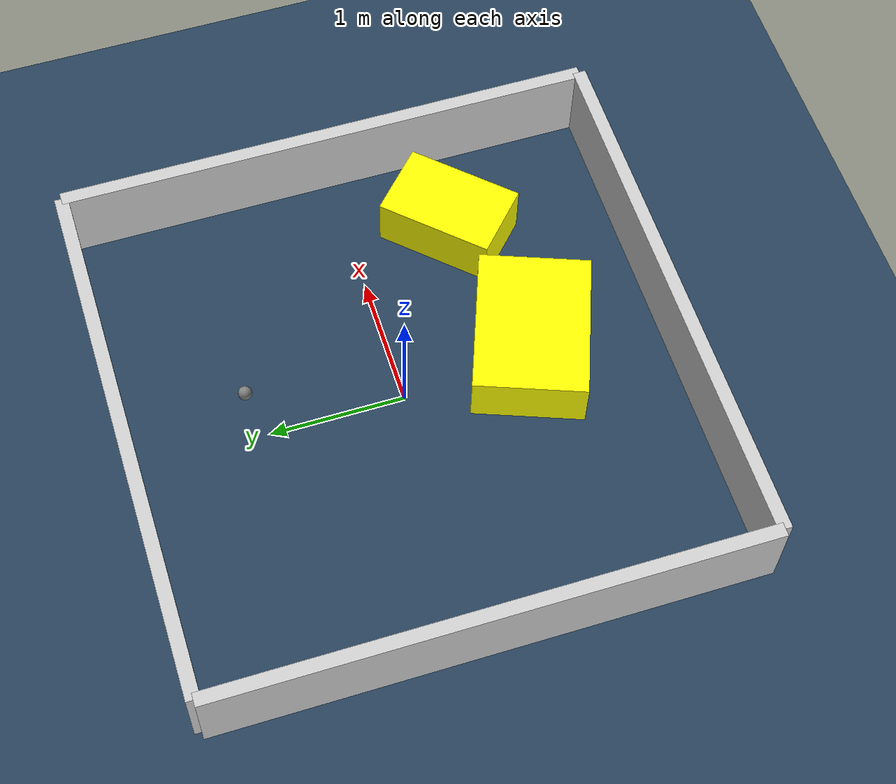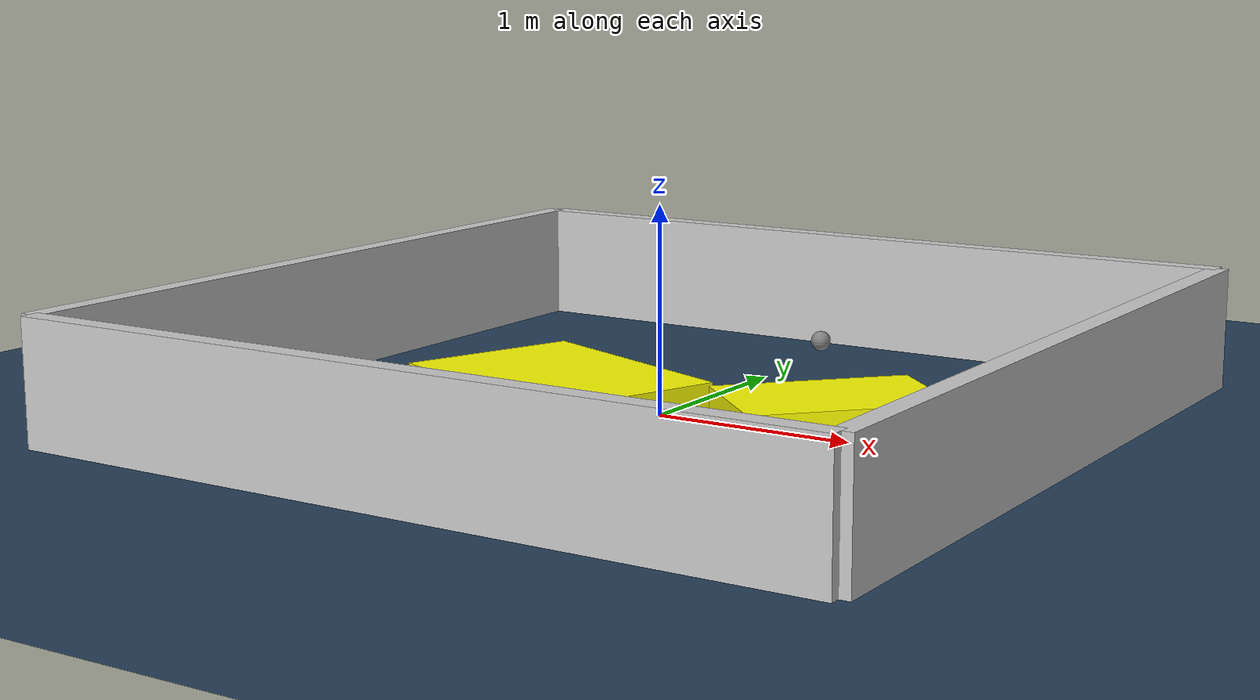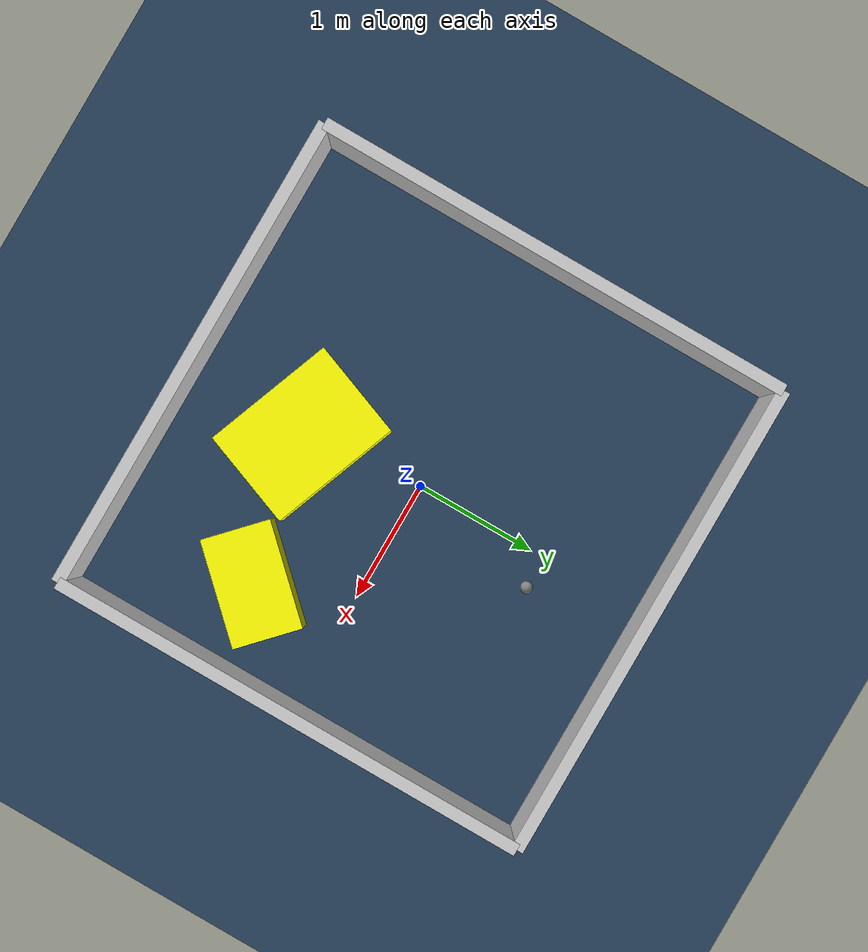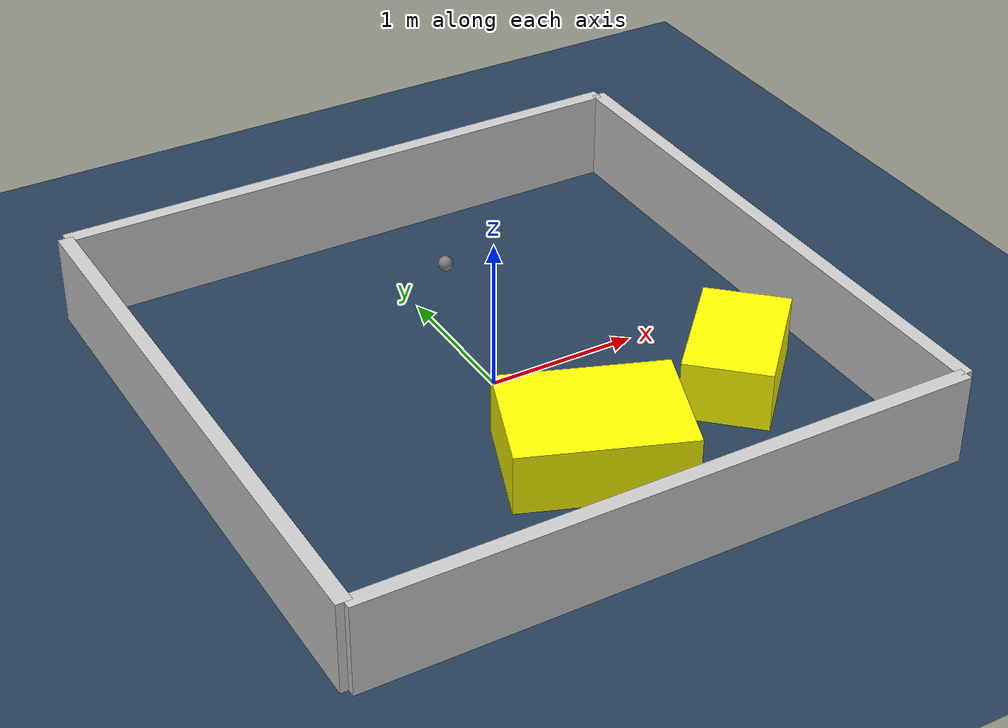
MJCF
<?xml version="1.0" ?>
<mujoco model="generated_environment">
  <option timestep="0.01" integrator="RK4" cone="elliptic"/>
  <default>
    <geom density="1"/>
  </default>
  <asset>
    <texture builtin="gradient" height="3072" rgb1="0.3 0.5 0.7" rgb2="0 0 0" type="skybox" width="512"/>
    <texture builtin="checker" height="300" mark="edge" markrgb="0.8 0.8 0.8" name="groundplane" rgb1="0.2 0.3 0.4" rgb2="0.1 0.2 0.3" type="2d" width="300"/>
    <material name="groundplane" reflectance="0.2" texrepeat="5 5" texture="groundplane" texuniform="true"/>
    <material name="robot" rgba="0.0 1.0 0.0 1"/>
  </asset>
  <worldbody>
    <light dir="0 0 -1" directional="true" pos="0 0 1.5"/>
    <geom condim="4" friction="1.0 0.005 0.001" material="groundplane" name="floor" size="0 0 0.05" type="plane"/>
    <body name="walls">
      <geom name="wall_1" condim="4" pos="-2.0 0.0 0.3" rgba="0.800000011920929 0.800000011920929 0.800000011920929 1.0" size="0.05 2.0 0.3" type="box"/>
      <geom name="wall_2" condim="4" pos="2.0 0.0 0.3" rgba="0.800000011920929 0.800000011920929 0.800000011920929 1.0" size="0.05 2.0 0.3" type="box"/>
      <geom name="wall_3" condim="4" pos="0.0 -2.0 0.3" rgba="0.800000011920929 0.800000011920929 0.800000011920929 1.0" size="2.0 0.05 0.3" type="box"/>
      <geom name="wall_4" condim="4" pos="0.0 2.0 0.3" rgba="0.800000011920929 0.800000011920929 0.800000011920929 1.0" size="2.0 0.05 0.3" type="box"/>
    </body>
    <body name="robot">
      <joint name="joint_x" type="slide" pos="0 0 0" axis="1 0 0"/>
      <joint name="joint_y" type="slide" pos="0 0 0" axis="0 1 0"/>
      <geom name="robot" type="sphere" pos="0.2637217698169816 1.1017310228709163 0.2" size="0.05" mass="5." friction="1.0 0.005 0.0001" condim="4"/>
      <site name="sensor_ball"/>
    </body>
    <body name="obstacle_1_movable">
      <geom name="obstacle_1_movable" condim="4" pos="1.2965300749563853 -0.7445197421043801 0.2" euler="0 0 316.77176952630157" friction="1.0 0.005 0.001" rgba="1 1 0 1" size="0.28047918069193495 0.4372071801790469 0.2" type="box" mass="0.1"/>
      <joint type="free"/>
    </body>
    <body name="obstacle_2_movable">
      <geom name="obstacle_2_movable" condim="4" pos="0.11152941897816016 -0.9893135880147714 0.2" euler="0 0 339.2443631349758" friction="1.0 0.005 0.001" rgba="1 1 0 1" size="0.5501275111567472 0.4090270811884904 0.2" type="box" mass="0.1"/>
      <joint type="free"/>
    </body>
  </worldbody>
  <actuator>
    <motor name="actuator_x" joint="joint_x" gear="1" ctrlrange="-1 1"/>
    <motor name="actuator_y" joint="joint_y" gear="1" ctrlrange="-1 1"/>
  </actuator>
</mujoco>
